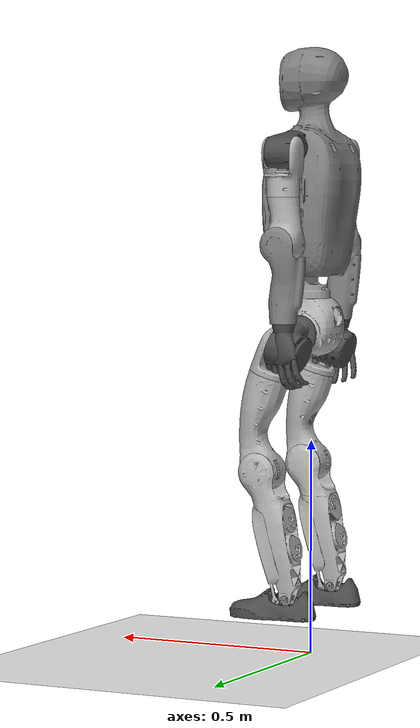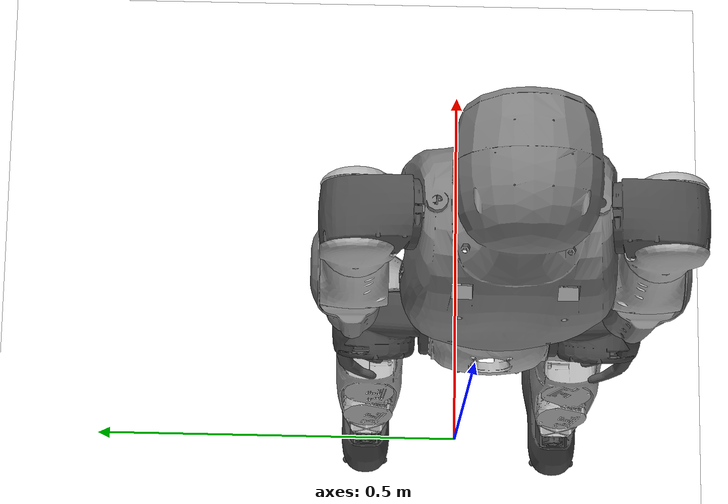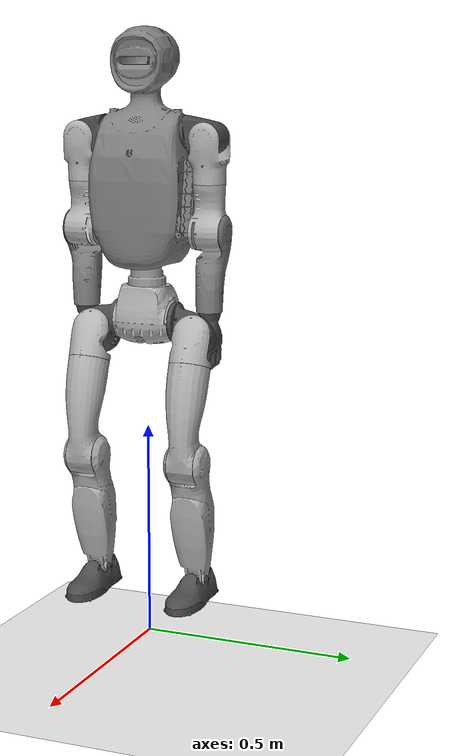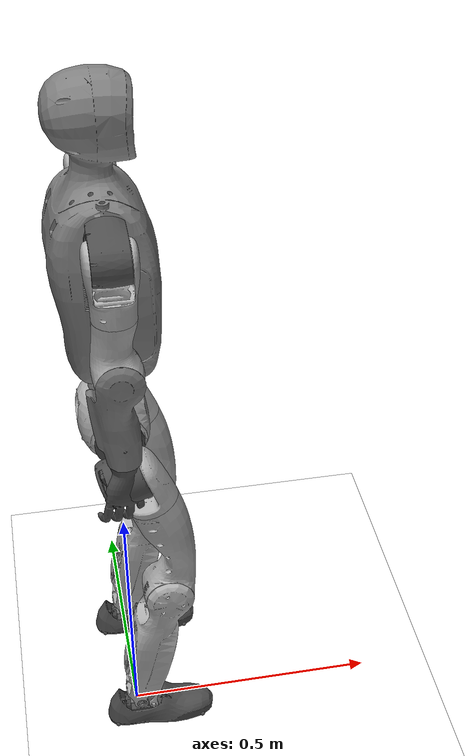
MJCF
<mujoco model="NE01_scene">
  <compiler angle="radian" meshdir="meshes"/>

  <visual>
    <headlight diffuse="0.6 0.6 0.6" ambient="0.1 0.1 0.1" specular="0.9 0.9 0.9"/>
    <rgba haze="0.15 0.25 0.35 1"/>
    <global azimuth="-140" elevation="-20" offwidth="2080" offheight="1170"/>
  </visual>

  <option timestep="0.002" gravity="0 0 -9.81"/>

  <default>
    <joint damping="0.5" armature="0.01" frictionloss="0.1"/>
    <geom contype="1" conaffinity="1" friction="1.0 0.005 0.0001"/>
  </default>

  <asset>
    <texture type="skybox" builtin="gradient" rgb1="1 1 1" rgb2="1 1 1" width="800" height="800"/>
    <texture type="2d" name="groundplane" builtin="checker" mark="edge" rgb1="1 1 1" rgb2="1 1 1" markrgb="0 0 0" width="300" height="300"/>
    <material name="groundplane" texture="groundplane" texuniform="true" texrepeat="5 5" reflectance="0"/>
    <mesh name="base_link" file="base_link.STL"/>
    <mesh name="WAIST_YAW" file="WAIST_YAW.STL"/>
    <mesh name="TORSO_LINK" file="TORSO_LINK.STL"/>
    <mesh name="SHOULDER_PITCH_R" file="SHOULDER_PITCH_R_LINK.STL"/>
    <mesh name="SHOULDER_ROLL_R" file="SHOULDER_ROLL_R_LINK.STL"/>
    <mesh name="SHOULDER_YAW_R" file="SHOULDER_YAW_R_LINK.STL"/>
    <mesh name="ELBOW_PITCH_R" file="ELBOW_PITCH_R_LINK.STL"/>
    <mesh name="HAND_YAW_R" file="HAND_YAW_R_LINK.STL"/>
    <mesh name="SHOULDER_PITCH_L" file="SHOULDER_PITCH_L_LINK.STL"/>
    <mesh name="SHOULDER_ROLL_L" file="SHOULDER_ROLL_L_LINK.STL"/>
    <mesh name="SHOULDER_YAW_L" file="SHOULDER_YAW_L_LINK.STL"/>
    <mesh name="ELBOW_PITCH_L" file="ELBOW_PITCH_L_LINK.STL"/>
    <mesh name="HAND_YAW_L" file="HAND_YAW_L_LINK.STL"/>
    <mesh name="HIP_PITCH_R" file="HIP_PITCH_R_LINK.STL"/>
    <mesh name="HIP_ROLL_R" file="HIP_ROLL_R_LINK.STL"/>
    <mesh name="HIP_YAW_R" file="HIP_YAW_R_LINK.STL"/>
    <mesh name="KNEE_PITCH_R" file="KNEE_PITCH_R_LINK.STL"/>
    <mesh name="ANKLE_PITCH_R" file="ANKLE_PITCH_R_LINK.STL"/>
    <mesh name="ANKLE_ROLL_R" file="ANKLE_ROLL_R_LINK.STL"/>
    <mesh name="HIP_PITCH_L" file="HIP_PITCH_L_LINK.STL"/>
    <mesh name="HIP_ROLL_L" file="HIP_ROLL_L_LINK.STL"/>
    <mesh name="HIP_YAW_L" file="HIP_YAW_L_LINK.STL"/>
    <mesh name="KNEE_PITCH_L" file="KNEE_PITCH_L_LINK.STL"/>
    <mesh name="ANKLE_PITCH_L" file="ANKLE_PITCH_L_LINK.STL"/>
    <mesh name="ANKLE_ROLL_L" file="ANKLE_ROLL_L_LINK.STL"/>
  </asset>

  <worldbody>
    <geom name="floor" size="0 0 0.01" type="plane" material="groundplane" contype="1" conaffinity="0" priority="1" friction="0.6" condim="3"/>
    <light diffuse=".5 .5 .5" pos="-3 -3 5" dir="3 3 -5" castshadow="true"/>

    <body name="base_link" pos="0 0 0.75">
      <inertial pos="-0.001477 -3.65e-06 0.01217" mass="2.7219" diaginertia="0.007081 0.006484 0.005309"/>
      <joint name="floating_base" type="free"/>
      <geom type="mesh" contype="0" conaffinity="0" group="1" density="0" rgba="0.7 0.7 0.7 1" mesh="base_link"/>
      <geom name="v3_pelvis_proxy" size="0.06 0.062 0.064" pos="-0.005 0 0.0125" type="box" rgba="0 0 0 0" contype="1" conaffinity="1"/>

      <!-- Waist: base_link -> WAIST_YAW -> TORSO_LINK -->
      <body name="WAIST_YAW" pos="0 0 0.0485">
        <inertial pos="0.001254 -5.33e-07 0.05838" mass="1.1041" diaginertia="0.001920 0.001920 0.000752"/>
        <joint name="WAIST_YAW_JOINT" pos="0 0 0" axis="0 0 1" range="-2.618 2.618"/>
        <geom type="mesh" contype="0" conaffinity="0" group="1" density="0" rgba="0.6 0.6 0.6 1" mesh="WAIST_YAW"/>

        <body name="TORSO_LINK" pos="0 0 0.103">
          <inertial pos="0.001909 0.001873 0.17711" mass="10.3193" diaginertia="0.16813 0.15606 0.04378"/>
          <joint name="TORSO_ROLL_JOINT" pos="0 0 0" axis="1 0 0" range="-0.5236 0.5236"/>
          <geom type="mesh" contype="0" conaffinity="0" group="1" density="0" rgba="0.5 0.5 0.5 1" mesh="TORSO_LINK"/>
          <geom name="v3_torso_proxy" size="0.075 0.072 0.135" pos="0 0 0.1785" type="box" rgba="0 0 0 0" contype="1" conaffinity="1"/>

          <!-- Right Arm (from TORSO_LINK) -->
          <body name="SHOULDER_PITCH_R_LINK" pos="0 -0.0859965 0.2721" quat="0.996195 -0.0871558 0 0">
            <inertial pos="-0.000632 -0.043985 -0.011578" mass="0.99881" diaginertia="0.001655 0.001524 0.000714"/>
            <joint name="SHOULDER_PITCH_R_JOINT" pos="0 0 0" axis="0 1 0" range="-3.0892 2.6704"/>
            <geom type="mesh" contype="0" conaffinity="0" group="1" density="0" rgba="0.3 0.3 0.3 1" mesh="SHOULDER_PITCH_R"/>
            <body name="SHOULDER_ROLL_R_LINK" pos="0 -0.0666201 -0.0191295" quat="0.996195 0.0871558 0 0">
              <inertial pos="0.004936 -0.000210 -0.045512" mass="0.75726" diaginertia="0.001407 0.001273 0.000620"/>
              <joint name="SHOULDER_ROLL_R_JOINT" pos="0 0 0" axis="1 0 0" range="-3.1416 0.01745"/>
              <geom type="mesh" contype="0" conaffinity="0" group="1" density="0" rgba="0.7 0.7 0.7 1" mesh="SHOULDER_ROLL_R"/>
              <body name="SHOULDER_YAW_R_LINK" pos="0 0 -0.1">
                <inertial pos="-0.000764 -0.002137 -0.079608" mass="0.87687" diaginertia="0.002213 0.002218 0.000555"/>
                <joint name="SHOULDER_YAW_R_JOINT" pos="0 0 0" axis="0 0 1" range="-2.618 2.618"/>
                <geom type="mesh" contype="0" conaffinity="0" group="1" density="0" rgba="0.7 0.7 0.7 1" mesh="SHOULDER_YAW_R"/>
                <body name="ELBOW_PITCH_R_LINK" pos="0 0 -0.109171">
                  <inertial pos="-0.002601 -0.009819 -0.089739" mass="0.82874" diaginertia="0.003812 0.003782 0.000625"/>
                  <joint name="ELBOW_PITCH_R_JOINT" pos="0 0 0" axis="0 1 0" range="-2.0944 1.0472"/>
                  <geom type="mesh" contype="0" conaffinity="0" group="1" density="0" rgba="0.5 0.5 0.5 1" mesh="ELBOW_PITCH_R"/>
                  <geom name="v3_right_forearm_proxy" type="capsule" fromto="0 0 -0.015 -0.0014 0 -0.158" size="0.028" rgba="0 0 0 0" contype="1" conaffinity="1"/>
                  <body name="HAND_YAW_R_LINK" pos="-0.0014 0 -0.178">
                    <inertial pos="0.000837 0.001283 -0.043788" mass="0.33110" diaginertia="0.000845 0.000785 0.000148"/>
                    <joint name="HAND_YAW_R_JOINT" pos="0 0 0" axis="0 0 1" range="-1.527 1.527"/>
                    <geom type="mesh" contype="0" conaffinity="0" group="1" density="0" rgba="0.3 0.3 0.3 1" mesh="HAND_YAW_R"/>
                    <geom name="v3_right_hand_proxy" type="sphere" pos="0 0 -0.018" size="0.035" rgba="0 0 0 0" contype="1" conaffinity="1"/>
                  </body>
                </body>
              </body>
            </body>
          </body>

          <!-- Left Arm (from TORSO_LINK) -->
          <body name="SHOULDER_PITCH_L_LINK" pos="0 0.0859965 0.2721" quat="0.996195 0.0871558 0 0">
            <inertial pos="-0.000632 0.043985 -0.011578" mass="0.99881" diaginertia="0.001655 0.001524 0.000714"/>
            <joint name="SHOULDER_PITCH_L_JOINT" pos="0 0 0" axis="0 1 0" range="-3.0892 2.6704"/>
            <geom type="mesh" contype="0" conaffinity="0" group="1" density="0" rgba="0.3 0.3 0.3 1" mesh="SHOULDER_PITCH_L"/>
            <body name="SHOULDER_ROLL_L_LINK" pos="0 0.0666201 -0.0191295" quat="0.996195 -0.0871558 0 0">
              <inertial pos="0.004936 0.000210 -0.045512" mass="0.75726" diaginertia="0.001407 0.001273 0.000620"/>
              <joint name="SHOULDER_ROLL_L_JOINT" pos="0 0 0" axis="1 0 0" range="-0.01745 3.1416"/>
              <geom type="mesh" contype="0" conaffinity="0" group="1" density="0" rgba="0.7 0.7 0.7 1" mesh="SHOULDER_ROLL_L"/>
              <body name="SHOULDER_YAW_L_LINK" pos="0 0 -0.1">
                <inertial pos="-0.000764 0.002137 -0.079608" mass="0.87687" diaginertia="0.002213 0.002218 0.000555"/>
                <joint name="SHOULDER_YAW_L_JOINT" pos="0 0 0" axis="0 0 1" range="-2.618 2.618"/>
                <geom type="mesh" contype="0" conaffinity="0" group="1" density="0" rgba="0.7 0.7 0.7 1" mesh="SHOULDER_YAW_L"/>
                <body name="ELBOW_PITCH_L_LINK" pos="0 0 -0.109171">
                  <inertial pos="-0.002601 0.009819 -0.089739" mass="0.82874" diaginertia="0.003812 0.003782 0.000625"/>
                  <joint name="ELBOW_PITCH_L_JOINT" pos="0 0 0" axis="0 1 0" range="-2.0944 1.0472"/>
                  <geom type="mesh" contype="0" conaffinity="0" group="1" density="0" rgba="0.5 0.5 0.5 1" mesh="ELBOW_PITCH_L"/>
                  <geom name="v3_left_forearm_proxy" type="capsule" fromto="0 0 -0.015 -0.0014 0 -0.158" size="0.028" rgba="0 0 0 0" contype="1" conaffinity="1"/>
                  <body name="HAND_YAW_L_LINK" pos="-0.0014 0 -0.178">
                    <inertial pos="0.000837 -0.001283 -0.043788" mass="0.33110" diaginertia="0.000845 0.000785 0.000148"/>
                    <joint name="HAND_YAW_L_JOINT" pos="0 0 0" axis="0 0 1" range="-1.527 1.527"/>
                    <geom type="mesh" contype="0" conaffinity="0" group="1" density="0" rgba="0.3 0.3 0.3 1" mesh="HAND_YAW_L"/>
                    <geom name="v3_left_hand_proxy" type="sphere" pos="0 0 -0.018" size="0.035" rgba="0 0 0 0" contype="1" conaffinity="1"/>
                  </body>
                </body>
              </body>
            </body>
          </body>
        </body>
      </body>

      <!-- Right Leg (from base_link directly) -->
      <body name="HIP_PITCH_R_LINK" pos="0 -0.0682 0">
        <inertial pos="0.004738 -0.041369 -0.021168" mass="1.52158" diaginertia="0.002798 0.002276 0.001692"/>
        <joint name="HIP_PITCH_R_JOINT" pos="0 0 0" axis="0 1 0" range="-2.5307 2.8798"/>
        <geom type="mesh" contype="0" conaffinity="0" group="1" density="0" rgba="0.3 0.3 0.3 1" mesh="HIP_PITCH_R"/>
        <body name="HIP_ROLL_R_LINK" pos="0.0235979 -0.0583562 -0.0259965" quat="0.984808 0 -0.173648 0">
          <inertial pos="0.008783 -0.000236 -0.041246" mass="0.97065" diaginertia="0.001916 0.001844 0.000727"/>
          <joint name="HIP_ROLL_R_JOINT" pos="0 0 0" axis="1 0 0" range="-2.9671 0.5236"/>
          <geom type="mesh" contype="0" conaffinity="0" group="1" density="0" rgba="0.7 0.7 0.7 1" mesh="HIP_ROLL_R"/>
          <body name="HIP_YAW_R_LINK" pos="0 0 -0.084395">
            <inertial pos="-0.019976 0.000290 -0.121457" mass="2.88591" diaginertia="0.019285 0.018521 0.004645"/>
            <joint name="HIP_YAW_R_JOINT" pos="0 0 0" axis="0 0 1" range="-2.7576 2.7576"/>
            <geom type="mesh" contype="0" conaffinity="0" group="1" density="0" rgba="0.7 0.7 0.7 1" mesh="HIP_YAW_R"/>
            <body name="KNEE_PITCH_R_LINK" pos="-0.0588133 0 -0.2015" quat="0.984813 0 0.173616 0">
              <inertial pos="-0.034275 -0.003411 -0.124592" mass="2.50963" diaginertia="0.017504 0.017238 0.003292"/>
              <joint name="KNEE_PITCH_R_JOINT" pos="0 0 0" axis="0 1 0" range="-0.6592 2.3078"/>
              <geom type="mesh" contype="0" conaffinity="0" group="1" density="0" rgba="0.7 0.7 0.7 1" mesh="KNEE_PITCH_R"/>
              <body name="ANKLE_PITCH_R_LINK" pos="-0.0661134 0 -0.291599">
                <inertial pos="-0.002533 4.05e-05 -0.003287" mass="0.13586" diaginertia="3.137e-05 2.351e-05 1.829e-05"/>
                <joint name="ANKLE_PITCH_R_JOINT" pos="0 0 0" axis="0 1 0" range="-0.667 0.7292"/>
                <geom type="mesh" contype="0" conaffinity="0" group="1" density="0" rgba="0.5 0.5 0.5 1" mesh="ANKLE_PITCH_R"/>
                <body name="ANKLE_ROLL_R_LINK" pos="0 0 -0.008">
                  <inertial pos="0.037484 5.54e-07 -0.023480" mass="0.43467" diaginertia="0.001496 0.001403 0.000227"/>
                  <joint name="ANKLE_ROLL_R_JOINT" pos="0 0 0" axis="1 0 0" range="-0.2618 0.2618"/>
                  <geom type="mesh" contype="0" conaffinity="0" group="1" density="0" rgba="0.3 0.3 0.3 1" mesh="ANKLE_ROLL_R"/>
                  <geom name="right_foot_rear_left_collision" type="sphere" size="0.005" pos="-0.05 0.025 -0.035" rgba="0.3 0.3 0.3 1" priority="1" condim="3"/>
                  <geom name="right_foot_rear_right_collision" type="sphere" size="0.005" pos="-0.05 -0.025 -0.035" rgba="0.3 0.3 0.3 1" priority="1" condim="3"/>
                  <geom name="right_foot_front_left_collision" type="sphere" size="0.005" pos="0.12 0.03 -0.035" rgba="0.3 0.3 0.3 1" priority="1" condim="3"/>
                  <geom name="right_foot_front_right_collision" type="sphere" size="0.005" pos="0.12 -0.03 -0.035" rgba="0.3 0.3 0.3 1" priority="1" condim="3"/>
                  <body name="right_toe_link" pos="0.1 0 -0.02"/>
                </body>
              </body>
            </body>
          </body>
        </body>
      </body>

      <!-- Left Leg (from base_link directly) -->
      <body name="HIP_PITCH_L_LINK" pos="0 0.0682 0">
        <inertial pos="0.004738 0.041369 -0.021168" mass="1.52158" diaginertia="0.002798 0.002276 0.001692"/>
        <joint name="HIP_PITCH_L_JOINT" pos="0 0 0" axis="0 1 0" range="-2.5307 2.8798"/>
        <geom type="mesh" contype="0" conaffinity="0" group="1" density="0" rgba="0.3 0.3 0.3 1" mesh="HIP_PITCH_L"/>
        <body name="HIP_ROLL_L_LINK" pos="0.0235979 0.0583562 -0.0259965" quat="0.984808 0 -0.173648 0">
          <inertial pos="0.008783 0.000236 -0.041246" mass="0.97065" diaginertia="0.001916 0.001844 0.000727"/>
          <joint name="HIP_ROLL_L_JOINT" pos="0 0 0" axis="1 0 0" range="-0.5236 2.9671"/>
          <geom type="mesh" contype="0" conaffinity="0" group="1" density="0" rgba="0.7 0.7 0.7 1" mesh="HIP_ROLL_L"/>
          <body name="HIP_YAW_L_LINK" pos="0 0 -0.084395">
            <inertial pos="-0.019976 0.000290 -0.121457" mass="2.88591" diaginertia="0.019285 0.018521 0.004645"/>
            <joint name="HIP_YAW_L_JOINT" pos="0 0 0" axis="0 0 1" range="-2.7576 2.7576"/>
            <geom type="mesh" contype="0" conaffinity="0" group="1" density="0" rgba="0.7 0.7 0.7 1" mesh="HIP_YAW_L"/>
            <body name="KNEE_PITCH_L_LINK" pos="-0.0588133 0 -0.2015" quat="0.984813 0 0.173616 0">
              <inertial pos="-0.034275 0.003411 -0.124592" mass="2.50963" diaginertia="0.017504 0.017238 0.003292"/>
              <joint name="KNEE_PITCH_L_JOINT" pos="0 0 0" axis="0 1 0" range="-0.6592 2.3078"/>
              <geom type="mesh" contype="0" conaffinity="0" group="1" density="0" rgba="0.7 0.7 0.7 1" mesh="KNEE_PITCH_L"/>
              <body name="ANKLE_PITCH_L_LINK" pos="-0.0661134 0 -0.291599">
                <inertial pos="-0.002533 4.05e-05 -0.003287" mass="0.13586" diaginertia="3.137e-05 2.351e-05 1.829e-05"/>
                <joint name="ANKLE_PITCH_L_JOINT" pos="0 0 0" axis="0 1 0" range="-0.667 0.7292"/>
                <geom type="mesh" contype="0" conaffinity="0" group="1" density="0" rgba="0.5 0.5 0.5 1" mesh="ANKLE_PITCH_L"/>
                <body name="ANKLE_ROLL_L_LINK" pos="0 0 -0.008">
                  <inertial pos="0.037484 5.54e-07 -0.023480" mass="0.43467" diaginertia="0.001496 0.001403 0.000227"/>
                  <joint name="ANKLE_ROLL_L_JOINT" pos="0 0 0" axis="1 0 0" range="-0.2618 0.2618"/>
                  <geom type="mesh" contype="0" conaffinity="0" group="1" density="0" rgba="0.3 0.3 0.3 1" mesh="ANKLE_ROLL_L"/>
                  <geom name="left_foot_rear_left_collision" type="sphere" size="0.005" pos="-0.05 0.025 -0.035" rgba="0.3 0.3 0.3 1" priority="1" condim="3"/>
                  <geom name="left_foot_rear_right_collision" type="sphere" size="0.005" pos="-0.05 -0.025 -0.035" rgba="0.3 0.3 0.3 1" priority="1" condim="3"/>
                  <geom name="left_foot_front_left_collision" type="sphere" size="0.005" pos="0.12 0.03 -0.035" rgba="0.3 0.3 0.3 1" priority="1" condim="3"/>
                  <geom name="left_foot_front_right_collision" type="sphere" size="0.005" pos="0.12 -0.03 -0.035" rgba="0.3 0.3 0.3 1" priority="1" condim="3"/>
                  <body name="left_toe_link" pos="0.1 0 -0.02"/>
                </body>
              </body>
            </body>
          </body>
        </body>
      </body>
    </body>
  </worldbody>

  <actuator>
    <motor name="WAIST_YAW"        joint="WAIST_YAW_JOINT"        ctrlrange="-150 150"/>
    <motor name="TORSO_ROLL"       joint="TORSO_ROLL_JOINT"       ctrlrange="-150 150"/>
    <motor name="SHOULDER_PITCH_R" joint="SHOULDER_PITCH_R_JOINT"  ctrlrange="-150 150"/>
    <motor name="SHOULDER_ROLL_R"  joint="SHOULDER_ROLL_R_JOINT"   ctrlrange="-150 150"/>
    <motor name="SHOULDER_YAW_R"   joint="SHOULDER_YAW_R_JOINT"   ctrlrange="-150 150"/>
    <motor name="ELBOW_PITCH_R"    joint="ELBOW_PITCH_R_JOINT"    ctrlrange="-150 150"/>
    <motor name="HAND_YAW_R"       joint="HAND_YAW_R_JOINT"       ctrlrange="-150 150"/>
    <motor name="SHOULDER_PITCH_L" joint="SHOULDER_PITCH_L_JOINT"  ctrlrange="-150 150"/>
    <motor name="SHOULDER_ROLL_L"  joint="SHOULDER_ROLL_L_JOINT"   ctrlrange="-150 150"/>
    <motor name="SHOULDER_YAW_L"   joint="SHOULDER_YAW_L_JOINT"   ctrlrange="-150 150"/>
    <motor name="ELBOW_PITCH_L"    joint="ELBOW_PITCH_L_JOINT"    ctrlrange="-150 150"/>
    <motor name="HAND_YAW_L"       joint="HAND_YAW_L_JOINT"       ctrlrange="-150 150"/>
    <motor name="HIP_PITCH_R"      joint="HIP_PITCH_R_JOINT"      ctrlrange="-70 70"/>
    <motor name="HIP_ROLL_R"       joint="HIP_ROLL_R_JOINT"       ctrlrange="-150 150"/>
    <motor name="HIP_YAW_R"        joint="HIP_YAW_R_JOINT"        ctrlrange="-150 150"/>
    <motor name="KNEE_PITCH_R"     joint="KNEE_PITCH_R_JOINT"     ctrlrange="-150 150"/>
    <motor name="ANKLE_PITCH_R"    joint="ANKLE_PITCH_R_JOINT"    ctrlrange="-150 150"/>
    <motor name="ANKLE_ROLL_R"     joint="ANKLE_ROLL_R_JOINT"     ctrlrange="-150 150"/>
    <motor name="HIP_PITCH_L"      joint="HIP_PITCH_L_JOINT"      ctrlrange="-70 70"/>
    <motor name="HIP_ROLL_L"       joint="HIP_ROLL_L_JOINT"       ctrlrange="-150 150"/>
    <motor name="HIP_YAW_L"        joint="HIP_YAW_L_JOINT"        ctrlrange="-150 150"/>
    <motor name="KNEE_PITCH_L"     joint="KNEE_PITCH_L_JOINT"     ctrlrange="-150 150"/>
    <motor name="ANKLE_PITCH_L"    joint="ANKLE_PITCH_L_JOINT"    ctrlrange="-150 150"/>
    <motor name="ANKLE_ROLL_L"     joint="ANKLE_ROLL_L_JOINT"     ctrlrange="-150 150"/>
  </actuator>
</mujoco>
